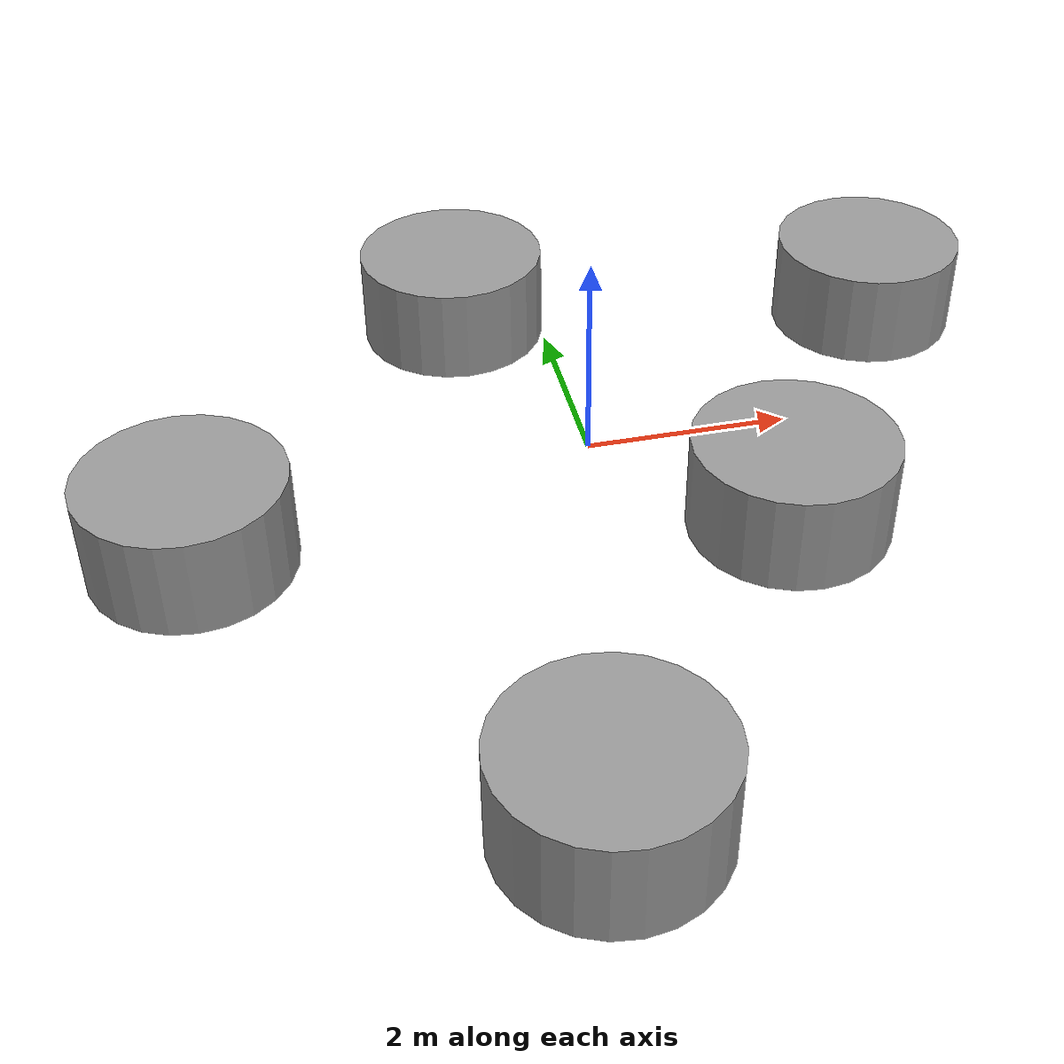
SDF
<?xml version='1.0'?>
<sdf version='1.7'>
  <model name='lab_design_2'>
    <link name='link_1'>
      <inertial>
        <mass>1</mass>
        <inertia>
          <ixx>0.145833</ixx>
          <ixy>0</ixy>
          <ixz>0</ixz>
          <iyy>0.145833</iyy>
          <iyz>0</iyz>
          <izz>0.125</izz>
        </inertia>
        <pose>0 0 0 0 -0 0</pose>
      </inertial>
      <pose>1.74827 -1.00362 0 0 -0 0</pose>
      <gravity>1</gravity>
      <self_collide>0</self_collide>
      <kinematic>0</kinematic>
      <enable_wind>0</enable_wind>
      <visual name='visual'>
        <pose>0 0 0 0 -0 0</pose>
        <geometry>
          <cylinder>
            <radius>1</radius>
            <length>1</length>
          </cylinder>
        </geometry>
        <material>
          <lighting>1</lighting>
          <script>
            <uri>file://media/materials/scripts/gazebo.material</uri>
            <name>Gazebo/Grey</name>
          </script>
          <shader type='pixel'>
            <normal_map>__default__</normal_map>
          </shader>
          <ambient>0.3 0.3 0.3 1</ambient>
          <diffuse>0.7 0.7 0.7 1</diffuse>
          <specular>0.01 0.01 0.01 1</specular>
          <emissive>0 0 0 1</emissive>
        </material>
        <transparency>0</transparency>
        <cast_shadows>1</cast_shadows>
      </visual>
      <collision name='collision'>
        <laser_retro>0</laser_retro>
        <max_contacts>10</max_contacts>
        <pose>0 0 0 0 -0 0</pose>
        <geometry>
          <cylinder>
            <radius>0.5</radius>
            <length>1</length>
          </cylinder>
        </geometry>
        <surface>
          <friction>
            <ode>
              <mu>1</mu>
              <mu2>1</mu2>
              <fdir1>0 0 0</fdir1>
              <slip1>0</slip1>
              <slip2>0</slip2>
            </ode>
            <torsional>
              <coefficient>1</coefficient>
              <patch_radius>0</patch_radius>
              <surface_radius>0</surface_radius>
              <use_patch_radius>1</use_patch_radius>
              <ode>
                <slip>0</slip>
              </ode>
            </torsional>
          </friction>
          <bounce>
            <restitution_coefficient>0</restitution_coefficient>
            <threshold>1e+06</threshold>
          </bounce>
          <contact>
            <collide_without_contact>0</collide_without_contact>
            <collide_without_contact_bitmask>1</collide_without_contact_bitmask>
            <collide_bitmask>1</collide_bitmask>
            <ode>
              <soft_cfm>0</soft_cfm>
              <soft_erp>0.2</soft_erp>
              <kp>1e+13</kp>
              <kd>1</kd>
              <max_vel>0.01</max_vel>
              <min_depth>0</min_depth>
            </ode>
            <bullet>
              <split_impulse>1</split_impulse>
              <split_impulse_penetration_threshold>-0.01</split_impulse_penetration_threshold>
              <soft_cfm>0</soft_cfm>
              <soft_erp>0.2</soft_erp>
              <kp>1e+13</kp>
              <kd>1</kd>
            </bullet>
          </contact>
        </surface>
      </collision>
    </link>
    <link name='link_1_clone'>
      <inertial>
        <mass>1</mass>
        <inertia>
          <ixx>0.145833</ixx>
          <ixy>0</ixy>
          <ixz>0</ixz>
          <iyy>0.145833</iyy>
          <iyz>0</iyz>
          <izz>0.125</izz>
        </inertia>
        <pose>0 0 0 0 -0 0</pose>
      </inertial>
      <pose>-0.795277 3.21424 0 0 -0 0</pose>
      <gravity>1</gravity>
      <self_collide>0</self_collide>
      <kinematic>0</kinematic>
      <enable_wind>0</enable_wind>
      <visual name='visual'>
        <pose>0 0 0 0 -0 0</pose>
        <geometry>
          <cylinder>
            <radius>1</radius>
            <length>1</length>
          </cylinder>
        </geometry>
        <material>
          <lighting>1</lighting>
          <script>
            <uri>file://media/materials/scripts/gazebo.material</uri>
            <name>Gazebo/Grey</name>
          </script>
          <shader type='pixel'>
            <normal_map>__default__</normal_map>
          </shader>
          <ambient>0.3 0.3 0.3 1</ambient>
          <diffuse>0.7 0.7 0.7 1</diffuse>
          <specular>0.01 0.01 0.01 1</specular>
          <emissive>0 0 0 1</emissive>
        </material>
        <transparency>0</transparency>
        <cast_shadows>1</cast_shadows>
      </visual>
      <collision name='collision'>
        <laser_retro>0</laser_retro>
        <max_contacts>10</max_contacts>
        <pose>0 0 0 0 -0 0</pose>
        <geometry>
          <cylinder>
            <radius>0.5</radius>
            <length>1</length>
          </cylinder>
        </geometry>
        <surface>
          <friction>
            <ode>
              <mu>1</mu>
              <mu2>1</mu2>
              <fdir1>0 0 0</fdir1>
              <slip1>0</slip1>
              <slip2>0</slip2>
            </ode>
            <torsional>
              <coefficient>1</coefficient>
              <patch_radius>0</patch_radius>
              <surface_radius>0</surface_radius>
              <use_patch_radius>1</use_patch_radius>
              <ode>
                <slip>0</slip>
              </ode>
            </torsional>
          </friction>
          <bounce>
            <restitution_coefficient>0</restitution_coefficient>
            <threshold>1e+06</threshold>
          </bounce>
          <contact>
            <collide_without_contact>0</collide_without_contact>
            <collide_without_contact_bitmask>1</collide_without_contact_bitmask>
            <collide_bitmask>1</collide_bitmask>
            <ode>
              <soft_cfm>0</soft_cfm>
              <soft_erp>0.2</soft_erp>
              <kp>1e+13</kp>
              <kd>1</kd>
              <max_vel>0.01</max_vel>
              <min_depth>0</min_depth>
            </ode>
            <bullet>
              <split_impulse>1</split_impulse>
              <split_impulse_penetration_threshold>-0.01</split_impulse_penetration_threshold>
              <soft_cfm>0</soft_cfm>
              <soft_erp>0.2</soft_erp>
              <kp>1e+13</kp>
              <kd>1</kd>
            </bullet>
          </contact>
        </surface>
      </collision>
    </link>
    <link name='link_1_clone_0'>
      <inertial>
        <mass>1</mass>
        <inertia>
          <ixx>0.145833</ixx>
          <ixy>0</ixy>
          <ixz>0</ixz>
          <iyy>0.145833</iyy>
          <iyz>0</iyz>
          <izz>0.125</izz>
        </inertia>
        <pose>0 0 0 0 -0 0</pose>
      </inertial>
      <pose>3.82861 2.46178 0 0 -0 0</pose>
      <gravity>1</gravity>
      <self_collide>0</self_collide>
      <kinematic>0</kinematic>
      <enable_wind>0</enable_wind>
      <visual name='visual'>
        <pose>0 0 0 0 -0 0</pose>
        <geometry>
          <cylinder>
            <radius>1</radius>
            <length>1</length>
          </cylinder>
        </geometry>
        <material>
          <lighting>1</lighting>
          <script>
            <uri>file://media/materials/scripts/gazebo.material</uri>
            <name>Gazebo/Grey</name>
          </script>
          <shader type='pixel'>
            <normal_map>__default__</normal_map>
          </shader>
          <ambient>0.3 0.3 0.3 1</ambient>
          <diffuse>0.7 0.7 0.7 1</diffuse>
          <specular>0.01 0.01 0.01 1</specular>
          <emissive>0 0 0 1</emissive>
        </material>
        <transparency>0</transparency>
        <cast_shadows>1</cast_shadows>
      </visual>
      <collision name='collision'>
        <laser_retro>0</laser_retro>
        <max_contacts>10</max_contacts>
        <pose>0 0 0 0 -0 0</pose>
        <geometry>
          <cylinder>
            <radius>0.5</radius>
            <length>1</length>
          </cylinder>
        </geometry>
        <surface>
          <friction>
            <ode>
              <mu>1</mu>
              <mu2>1</mu2>
              <fdir1>0 0 0</fdir1>
              <slip1>0</slip1>
              <slip2>0</slip2>
            </ode>
            <torsional>
              <coefficient>1</coefficient>
              <patch_radius>0</patch_radius>
              <surface_radius>0</surface_radius>
              <use_patch_radius>1</use_patch_radius>
              <ode>
                <slip>0</slip>
              </ode>
            </torsional>
          </friction>
          <bounce>
            <restitution_coefficient>0</restitution_coefficient>
            <threshold>1e+06</threshold>
          </bounce>
          <contact>
            <collide_without_contact>0</collide_without_contact>
            <collide_without_contact_bitmask>1</collide_without_contact_bitmask>
            <collide_bitmask>1</collide_bitmask>
            <ode>
              <soft_cfm>0</soft_cfm>
              <soft_erp>0.2</soft_erp>
              <kp>1e+13</kp>
              <kd>1</kd>
              <max_vel>0.01</max_vel>
              <min_depth>0</min_depth>
            </ode>
            <bullet>
              <split_impulse>1</split_impulse>
              <split_impulse_penetration_threshold>-0.01</split_impulse_penetration_threshold>
              <soft_cfm>0</soft_cfm>
              <soft_erp>0.2</soft_erp>
              <kp>1e+13</kp>
              <kd>1</kd>
            </bullet>
          </contact>
        </surface>
      </collision>
    </link>
    <link name='link_1_clone_1'>
      <inertial>
        <mass>1</mass>
        <inertia>
          <ixx>0.145833</ixx>
          <ixy>0</ixy>
          <ixz>0</ixz>
          <iyy>0.145833</iyy>
          <iyz>0</iyz>
          <izz>0.125</izz>
        </inertia>
        <pose>0 0 0 0 -0 0</pose>
      </inertial>
      <pose>-0.886067 -4.35595 0 0 -0 0</pose>
      <gravity>1</gravity>
      <self_collide>0</self_collide>
      <kinematic>0</kinematic>
      <enable_wind>0</enable_wind>
      <visual name='visual'>
        <pose>0 0 0 0 -0 0</pose>
        <geometry>
          <cylinder>
            <radius>1</radius>
            <length>1</length>
          </cylinder>
        </geometry>
        <material>
          <lighting>1</lighting>
          <script>
            <uri>file://media/materials/scripts/gazebo.material</uri>
            <name>Gazebo/Grey</name>
          </script>
          <shader type='pixel'>
            <normal_map>__default__</normal_map>
          </shader>
          <ambient>0.3 0.3 0.3 1</ambient>
          <diffuse>0.7 0.7 0.7 1</diffuse>
          <specular>0.01 0.01 0.01 1</specular>
          <emissive>0 0 0 1</emissive>
        </material>
        <transparency>0</transparency>
        <cast_shadows>1</cast_shadows>
      </visual>
      <collision name='collision'>
        <laser_retro>0</laser_retro>
        <max_contacts>10</max_contacts>
        <pose>0 0 0 0 -0 0</pose>
        <geometry>
          <cylinder>
            <radius>0.5</radius>
            <length>1</length>
          </cylinder>
        </geometry>
        <surface>
          <friction>
            <ode>
              <mu>1</mu>
              <mu2>1</mu2>
              <fdir1>0 0 0</fdir1>
              <slip1>0</slip1>
              <slip2>0</slip2>
            </ode>
            <torsional>
              <coefficient>1</coefficient>
              <patch_radius>0</patch_radius>
              <surface_radius>0</surface_radius>
              <use_patch_radius>1</use_patch_radius>
              <ode>
                <slip>0</slip>
              </ode>
            </torsional>
          </friction>
          <bounce>
            <restitution_coefficient>0</restitution_coefficient>
            <threshold>1e+06</threshold>
          </bounce>
          <contact>
            <collide_without_contact>0</collide_without_contact>
            <collide_without_contact_bitmask>1</collide_without_contact_bitmask>
            <collide_bitmask>1</collide_bitmask>
            <ode>
              <soft_cfm>0</soft_cfm>
              <soft_erp>0.2</soft_erp>
              <kp>1e+13</kp>
              <kd>1</kd>
              <max_vel>0.01</max_vel>
              <min_depth>0</min_depth>
            </ode>
            <bullet>
              <split_impulse>1</split_impulse>
              <split_impulse_penetration_threshold>-0.01</split_impulse_penetration_threshold>
              <soft_cfm>0</soft_cfm>
              <soft_erp>0.2</soft_erp>
              <kp>1e+13</kp>
              <kd>1</kd>
            </bullet>
          </contact>
        </surface>
      </collision>
    </link>
    <link name='link_1_clone_2'>
      <inertial>
        <mass>1</mass>
        <inertia>
          <ixx>0.145833</ixx>
          <ixy>0</ixy>
          <ixz>0</ixz>
          <iyy>0.145833</iyy>
          <iyz>0</iyz>
          <izz>0.125</izz>
        </inertia>
        <pose>0 0 0 0 -0 0</pose>
      </inertial>
      <pose>-3.89554 -0.316455 0 0 -0 0</pose>
      <gravity>1</gravity>
      <self_collide>0</self_collide>
      <kinematic>0</kinematic>
      <enable_wind>0</enable_wind>
      <visual name='visual'>
        <pose>0 0 0 0 -0 0</pose>
        <geometry>
          <cylinder>
            <radius>1</radius>
            <length>1</length>
          </cylinder>
        </geometry>
        <material>
          <lighting>1</lighting>
          <script>
            <uri>file://media/materials/scripts/gazebo.material</uri>
            <name>Gazebo/Grey</name>
          </script>
          <shader type='pixel'>
            <normal_map>__default__</normal_map>
          </shader>
          <ambient>0.3 0.3 0.3 1</ambient>
          <diffuse>0.7 0.7 0.7 1</diffuse>
          <specular>0.01 0.01 0.01 1</specular>
          <emissive>0 0 0 1</emissive>
        </material>
        <transparency>0</transparency>
        <cast_shadows>1</cast_shadows>
      </visual>
      <collision name='collision'>
        <laser_retro>0</laser_retro>
        <max_contacts>10</max_contacts>
        <pose>0 0 0 0 -0 0</pose>
        <geometry>
          <cylinder>
            <radius>0.5</radius>
            <length>1</length>
          </cylinder>
        </geometry>
        <surface>
          <friction>
            <ode>
              <mu>1</mu>
              <mu2>1</mu2>
              <fdir1>0 0 0</fdir1>
              <slip1>0</slip1>
              <slip2>0</slip2>
            </ode>
            <torsional>
              <coefficient>1</coefficient>
              <patch_radius>0</patch_radius>
              <surface_radius>0</surface_radius>
              <use_patch_radius>1</use_patch_radius>
              <ode>
                <slip>0</slip>
              </ode>
            </torsional>
          </friction>
          <bounce>
            <restitution_coefficient>0</restitution_coefficient>
            <threshold>1e+06</threshold>
          </bounce>
          <contact>
            <collide_without_contact>0</collide_without_contact>
            <collide_without_contact_bitmask>1</collide_without_contact_bitmask>
            <collide_bitmask>1</collide_bitmask>
            <ode>
              <soft_cfm>0</soft_cfm>
              <soft_erp>0.2</soft_erp>
              <kp>1e+13</kp>
              <kd>1</kd>
              <max_vel>0.01</max_vel>
              <min_depth>0</min_depth>
            </ode>
            <bullet>
              <split_impulse>1</split_impulse>
              <split_impulse_penetration_threshold>-0.01</split_impulse_penetration_threshold>
              <soft_cfm>0</soft_cfm>
              <soft_erp>0.2</soft_erp>
              <kp>1e+13</kp>
              <kd>1</kd>
            </bullet>
          </contact>
        </surface>
      </collision>
    </link>
    <static>0</static>
    <allow_auto_disable>1</allow_auto_disable>
  </model>
</sdf>
